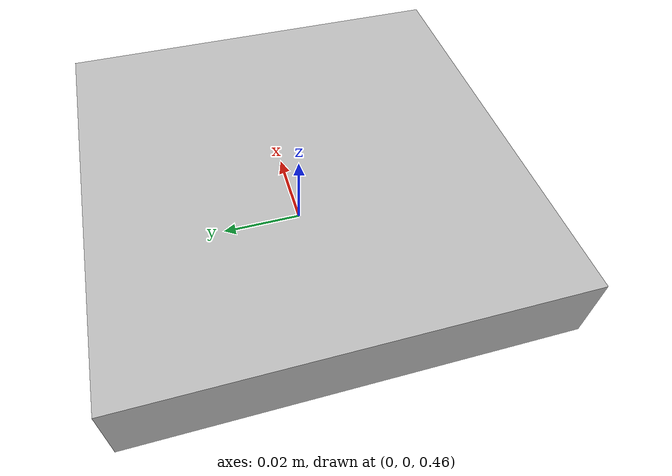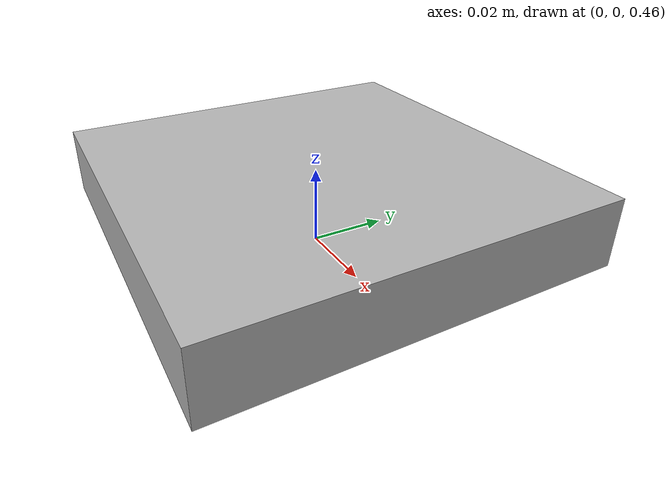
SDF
<?xml version="1.0" ?>
<sdf version="1.4">

<model name="smalltable">
<static>true</static>

<link name="link">
			<pose>0.000000 0.000000 0.473684 0.000000 0.000000 0.000000</pose>
        <inertial>
            <mass>1</mass>
            <inertia>
               <ixx>0.5</ixx>
               <ixy>0.0</ixy>
               <iyy>0.5</iyy>
               <ixz>0.0</ixz>
               <iyz>0.0</iyz>
               <izz>0.5</izz>
            </inertia>
         </inertial>
			<collision name="collision">
				<geometry>
				<box>
					<size>0.1 0.1 0.0175</size>
				</box>
        </geometry>
      </collision>
      <visual name="visual">
        <geometry>
				<box>
					<size>0.1 0.1 0.0175</size>
				</box>
		  </geometry>
      </visual>
    </link>

</model>
</sdf>
